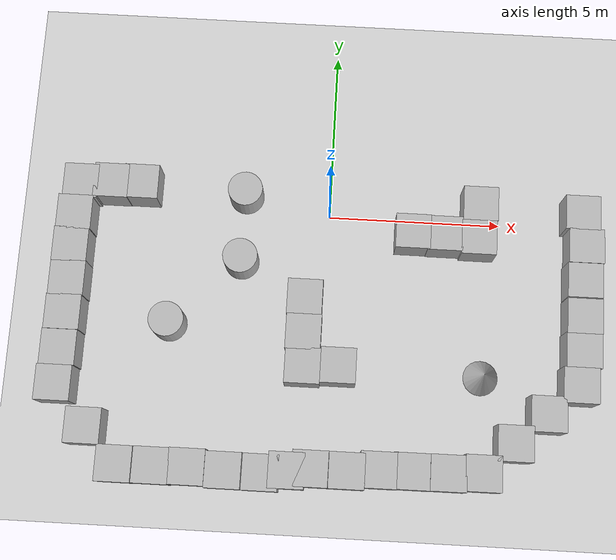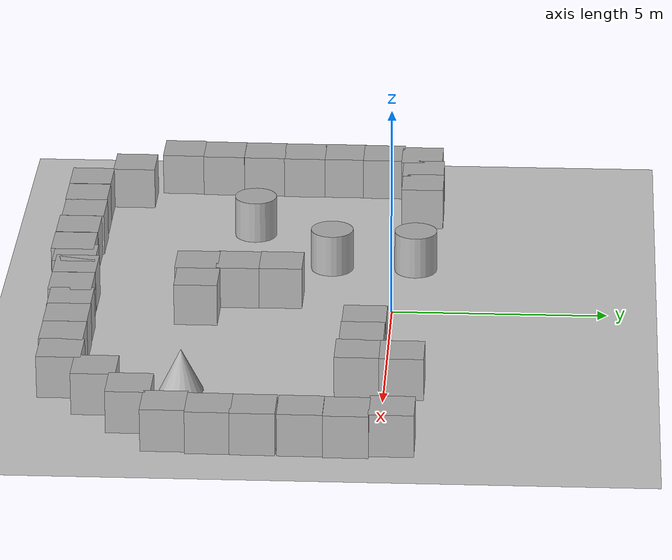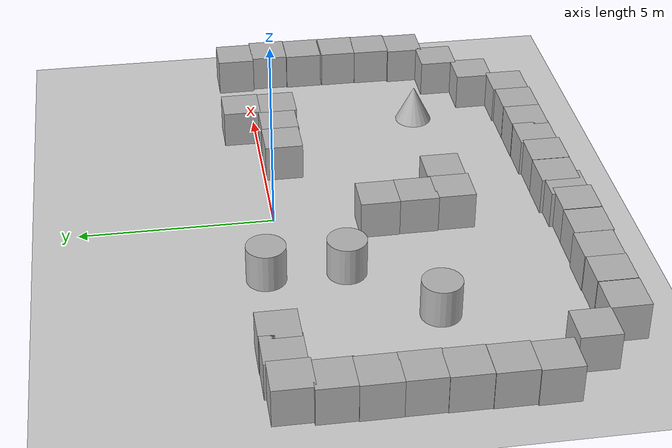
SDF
<sdf version="1.10">
 <world name="empty">
  <model name="ground_plane">
   <static>true</static>
   <link name="link">
    <collision name="collision">
     <geometry><plane><normal>0 0 1</normal><size>100 100</size></plane></geometry>
    </collision>
    <visual name="visual">
     <geometry><plane><normal>0 0 1</normal><size>100 100</size></plane></geometry>
     <material>
      <ambient>0.800000012 0.800000012 0.800000012 1</ambient>
      <diffuse>0.800000012 0.800000012 0.800000012 1</diffuse>
      <specular>0.800000012 0.800000012 0.800000012 1</specular>
     </material>
    </visual>
    <inertial>
     <mass>1</mass>
     <inertia><ixx>1</ixx><ixy>0</ixy><ixz>0</ixz><iyy>1</iyy><iyz>0</iyz><izz>1</izz></inertia>
    </inertial>
   </link>
  </model>
  <model name="cylinder">
   <pose>-2.4787298964407922 0.47555413468499341 0.49999942638036005 1.8965155421226654e-19 3.0032176483774435e-19 -9.0381767484860335e-21</pose>
   <link name="cylinder_link">
    <inertial>
     <inertia>
      <ixx>0.14580000000000001</ixx>
      <ixy>0</ixy>
      <ixz>0</ixz>
      <iyy>0.14580000000000001</iyy>
      <iyz>0</iyz>
      <izz>0.125</izz>
     </inertia>
     <mass>1</mass>
    </inertial>
    <collision name="cylinder_collision">
     <geometry><cylinder><radius>0.5</radius><length>1</length></cylinder></geometry>
    </collision>
    <visual name="cylinder_visual">
     <geometry><cylinder><radius>0.5</radius><length>1</length></cylinder></geometry>
     <material>
      <ambient>0.300000012 0.300000012 0.300000012 1</ambient>
      <diffuse>0.699999988 0.699999988 0.699999988 1</diffuse>
      <specular>1 1 1 1</specular>
     </material>
    </visual>
   </link>
   <static>false</static>
  </model>
  <model name="cylinder_0">
   <pose>-2.4944941398360996 -1.5050460931617933 0.49999942638036005 -9.451208056923102e-20 4.300082519062569e-19 6.8155861792033474e-21</pose>
   <link name="cylinder_link">
    <inertial>
     <inertia>
      <ixx>0.14580000000000001</ixx>
      <ixy>0</ixy>
      <ixz>0</ixz>
      <iyy>0.14580000000000001</iyy>
      <iyz>0</iyz>
      <izz>0.125</izz>
     </inertia>
     <mass>1</mass>
    </inertial>
    <collision name="cylinder_collision">
     <geometry><cylinder><radius>0.5</radius><length>1</length></cylinder></geometry>
    </collision>
    <visual name="cylinder_visual">
     <geometry><cylinder><radius>0.5</radius><length>1</length></cylinder></geometry>
     <material>
      <ambient>0.300000012 0.300000012 0.300000012 1</ambient>
      <diffuse>0.699999988 0.699999988 0.699999988 1</diffuse>
      <specular>1 1 1 1</specular>
     </material>
    </visual>
   </link>
   <static>false</static>
  </model>
  <model name="box_2">
   <pose>-0.53410556503870477 -4.5478043600571363 0.4999999902278196 1.9656681869713402e-08 -1.1524613135909799e-10 6.3075753912477546e-07</pose>
   <link name="box_link">
    <inertial>
     <inertia><ixx>0.16666</ixx><ixy>0</ixy><ixz>0</ixz><iyy>0.16666</iyy><iyz>0</iyz><izz>0.16666</izz></inertia>
     <mass>1</mass>
    </inertial>
    <collision name="box_collision"><geometry><box><size>1 1 1</size></box></geometry></collision>
    <visual name="box_visual">
     <geometry><box><size>1 1 1</size></box></geometry>
     <material>
      <ambient>0.300000012 0.300000012 0.300000012 1</ambient>
      <diffuse>0.699999988 0.699999988 0.699999988 1</diffuse>
      <specular>1 1 1 1</specular>
     </material>
    </visual>
   </link>
   <static>false</static>
  </model>
  <model name="box_3">
   <pose>-0.56094903997092826 -3.5893649230956175 0.49999999020007962 -9.8027606147936074e-09 -6.8125787869436315e-13 1.5771510889533733e-07</pose>
   <link name="box_link">
    <inertial>
     <inertia><ixx>0.16666</ixx><ixy>0</ixy><ixz>0</ixz><iyy>0.16666</iyy><iyz>0</iyz><izz>0.16666</izz></inertia>
     <mass>1</mass>
    </inertial>
    <collision name="box_collision"><geometry><box><size>1 1 1</size></box></geometry></collision>
    <visual name="box_visual">
     <geometry><box><size>1 1 1</size></box></geometry>
     <material>
      <ambient>0.300000012 0.300000012 0.300000012 1</ambient>
      <diffuse>0.699999988 0.699999988 0.699999988 1</diffuse>
      <specular>1 1 1 1</specular>
     </material>
    </visual>
   </link>
   <static>false</static>
  </model>
  <model name="box_4">
   <pose>-0.57684420060578601 -2.5893643469614012 0.49999999019962799 -9.7985463552778233e-09 -6.7892859761239003e-13 1.8663244424998509e-07</pose>
   <link name="box_link">
    <inertial>
     <inertia><ixx>0.16666</ixx><ixy>0</ixy><ixz>0</ixz><iyy>0.16666</iyy><iyz>0</iyz><izz>0.16666</izz></inertia>
     <mass>1</mass>
    </inertial>
    <collision name="box_collision"><geometry><box><size>1 1 1</size></box></geometry></collision>
    <visual name="box_visual">
     <geometry><box><size>1 1 1</size></box></geometry>
     <material>
      <ambient>0.300000012 0.300000012 0.300000012 1</ambient>
      <diffuse>0.699999988 0.699999988 0.699999988 1</diffuse>
      <specular>1 1 1 1</specular>
     </material>
    </visual>
   </link>
   <static>false</static>
  </model>
  <model name="box_5">
   <pose>0.4658941225453252 -4.4876447452990105 0.49999999019677743 1.4045741384028449e-11 9.5892851848946801e-09 3.1991576014536165e-07</pose>
   <link name="box_link">
    <inertial>
     <inertia><ixx>0.16666</ixx><ixy>0</ixy><ixz>0</ixz><iyy>0.16666</iyy><iyz>0</iyz><izz>0.16666</izz></inertia>
     <mass>1</mass>
    </inertial>
    <collision name="box_collision"><geometry><box><size>1 1 1</size></box></geometry></collision>
    <visual name="box_visual">
     <geometry><box><size>1 1 1</size></box></geometry>
     <material>
      <ambient>0.300000012 0.300000012 0.300000012 1</ambient>
      <diffuse>0.699999988 0.699999988 0.699999988 1</diffuse>
      <specular>1 1 1 1</specular>
     </material>
    </visual>
   </link>
   <static>false</static>
  </model>
  <model name="box_6">
   <pose>2.4251415029204986 -0.51640693351667699 0.49999999020007807 8.0485426714338308e-12 -1.9603181426533481e-08 3.2495010891417823e-06</pose>
   <link name="box_link">
    <inertial>
     <inertia><ixx>0.16666</ixx><ixy>0</ixy><ixz>0</ixz><iyy>0.16666</iyy><iyz>0</iyz><izz>0.16666</izz></inertia>
     <mass>1</mass>
    </inertial>
    <collision name="box_collision"><geometry><box><size>1 1 1</size></box></geometry></collision>
    <visual name="box_visual">
     <geometry><box><size>1 1 1</size></box></geometry>
     <material>
      <ambient>0.300000012 0.300000012 0.300000012 1</ambient>
      <diffuse>0.699999988 0.699999988 0.699999988 1</diffuse>
      <specular>1 1 1 1</specular>
     </material>
    </visual>
   </link>
   <static>false</static>
  </model>
  <model name="box_7">
   <pose>3.3460310593011684 -0.53319752396077735 0.49999999020248048 5.8692967133810578e-12 -1.9552070684915997e-08 7.8408606438712837e-06</pose>
   <link name="box_link">
    <inertial>
     <inertia><ixx>0.16666</ixx><ixy>0</ixy><ixz>0</ixz><iyy>0.16666</iyy><iyz>0</iyz><izz>0.16666</izz></inertia>
     <mass>1</mass>
    </inertial>
    <collision name="box_collision"><geometry><box><size>1 1 1</size></box></geometry></collision>
    <visual name="box_visual">
     <geometry><box><size>1 1 1</size></box></geometry>
     <material>
      <ambient>0.300000012 0.300000012 0.300000012 1</ambient>
      <diffuse>0.699999988 0.699999988 0.699999988 1</diffuse>
      <specular>1 1 1 1</specular>
     </material>
    </visual>
   </link>
   <static>false</static>
  </model>
  <model name="box_8">
   <pose>4.3155791228577778 -0.59553698079366979 0.49999999241762805 8.8830215002089552e-09 2.401707876268193e-08 2.4836349063779638e-05</pose>
   <link name="box_link">
    <inertial>
     <inertia><ixx>0.16666</ixx><ixy>0</ixy><ixz>0</ixz><iyy>0.16666</iyy><iyz>0</iyz><izz>0.16666</izz></inertia>
     <mass>1</mass>
    </inertial>
    <collision name="box_collision"><geometry><box><size>1 1 1</size></box></geometry></collision>
    <visual name="box_visual">
     <geometry><box><size>1 1 1</size></box></geometry>
     <material>
      <ambient>0.300000012 0.300000012 0.300000012 1</ambient>
      <diffuse>0.699999988 0.699999988 0.699999988 1</diffuse>
      <specular>1 1 1 1</specular>
     </material>
    </visual>
   </link>
   <static>false</static>
  </model>
  <model name="box_9">
   <pose>4.3448509277562826 0.40446374225777043 0.49999999211979645 7.6734533011678575e-09 2.3426084460918485e-08 2.4846498721593773e-05</pose>
   <link name="box_link">
    <inertial>
     <inertia><ixx>0.16666</ixx><ixy>0</ixy><ixz>0</ixz><iyy>0.16666</iyy><iyz>0</iyz><izz>0.16666</izz></inertia>
     <mass>1</mass>
    </inertial>
    <collision name="box_collision"><geometry><box><size>1 1 1</size></box></geometry></collision>
    <visual name="box_visual">
     <geometry><box><size>1 1 1</size></box></geometry>
     <material>
      <ambient>0.300000012 0.300000012 0.300000012 1</ambient>
      <diffuse>0.699999988 0.699999988 0.699999988 1</diffuse>
      <specular>1 1 1 1</specular>
     </material>
    </visual>
   </link>
   <static>false</static>
  </model>
  <model name="box_34">
   <pose>-5.5044315538563451 0.542083206494687 0.49999999990199806 2.163106304372845e-21 -1.6560291693952328e-21 2.2452215946946745e-23</pose>
   <link name="box_link">
    <inertial>
     <inertia><ixx>0.16666</ixx><ixy>0</ixy><ixz>0</ixz><iyy>0.16666</iyy><iyz>0</iyz><izz>0.16666</izz></inertia>
     <mass>1</mass>
    </inertial>
    <collision name="box_collision"><geometry><box><size>1 1 1</size></box></geometry></collision>
    <visual name="box_visual">
     <geometry><box><size>1 1 1</size></box></geometry>
     <material>
      <ambient>0.300000012 0.300000012 0.300000012 1</ambient>
      <diffuse>0.699999988 0.699999988 0.699999988 1</diffuse>
      <specular>1 1 1 1</specular>
     </material>
    </visual>
   </link>
   <static>false</static>
  </model>
  <model name="cone">
   <pose>4.5465773273243499 -4.5295696701376968 0.49999999993296756 5.2544987975732369e-17 -7.7132841042377457e-10 -9.1533761874780176e-23</pose>
   <link name="cone_link">
    <inertial>
     <inertia>
      <ixx>0.074999999999999997</ixx>
      <ixy>0</ixy>
      <ixz>0</ixz>
      <iyy>0.074999999999999997</iyy>
      <iyz>0</iyz>
      <izz>0.074999999999999997</izz>
     </inertia>
     <mass>1</mass>
    </inertial>
    <collision name="cone_collision">
     <geometry><cone><radius>0.5</radius><length>1</length></cone></geometry>
    </collision>
    <visual name="cone_visual">
     <geometry><cone><radius>0.5</radius><length>1</length></cone></geometry>
     <material>
      <ambient>0.300000012 0.300000012 0.300000012 1</ambient>
      <diffuse>0.699999988 0.699999988 0.699999988 1</diffuse>
      <specular>1 1 1 1</specular>
     </material>
    </visual>
   </link>
   <static>false</static>
  </model>
  <model name="cylinder_1">
   <pose>-4.4510745490723673 -3.4427415470059755 0.49999942638036005 1.2726184852691248e-19 1.5812777660193695e-19 -1.4361294515971304e-20</pose>
   <link name="cylinder_link">
    <inertial>
     <inertia>
      <ixx>0.14580000000000001</ixx>
      <ixy>0</ixy>
      <ixz>0</ixz>
      <iyy>0.14580000000000001</iyy>
      <iyz>0</iyz>
      <izz>0.125</izz>
     </inertia>
     <mass>1</mass>
    </inertial>
    <collision name="cylinder_collision">
     <geometry><cylinder><radius>0.5</radius><length>1</length></cylinder></geometry>
    </collision>
    <visual name="cylinder_visual">
     <geometry><cylinder><radius>0.5</radius><length>1</length></cylinder></geometry>
     <material>
      <ambient>0.300000012 0.300000012 0.300000012 1</ambient>
      <diffuse>0.699999988 0.699999988 0.699999988 1</diffuse>
      <specular>1 1 1 1</specular>
     </material>
    </visual>
   </link>
   <static>false</static>
  </model>
  <model name="box_39">
   <pose>-6.3780209379539787 0.5295749945149385 0.5 0 0 0</pose>
   <link name="box_link">
    <inertial>
     <inertia><ixx>0.16666</ixx><ixy>0</ixy><ixz>0</ixz><iyy>0.16666</iyy><iyz>0</iyz><izz>0.16666</izz></inertia>
     <mass>1</mass>
    </inertial>
    <collision name="box_collision"><geometry><box><size>1 1 1</size></box></geometry></collision>
    <visual name="box_visual">
     <geometry><box><size>1 1 1</size></box></geometry>
     <material>
      <ambient>0.300000012 0.300000012 0.300000012 1</ambient>
      <diffuse>0.699999988 0.699999988 0.699999988 1</diffuse>
      <specular>1 1 1 1</specular>
     </material>
    </visual>
   </link>
   <static>false</static>
  </model>
  <model name="box_40">
   <pose>-7.2518758245201305 0.47451998126555095 0.5 0 0 0</pose>
   <link name="box_link">
    <inertial>
     <inertia><ixx>0.16666</ixx><ixy>0</ixy><ixz>0</ixz><iyy>0.16666</iyy><iyz>0</iyz><izz>0.16666</izz></inertia>
     <mass>1</mass>
    </inertial>
    <collision name="box_collision"><geometry><box><size>1 1 1</size></box></geometry></collision>
    <visual name="box_visual">
     <geometry><box><size>1 1 1</size></box></geometry>
     <material>
      <ambient>0.300000012 0.300000012 0.300000012 1</ambient>
      <diffuse>0.699999988 0.699999988 0.699999988 1</diffuse>
      <specular>1 1 1 1</specular>
     </material>
    </visual>
   </link>
   <static>false</static>
  </model>
  <model name="box_41">
   <pose>-7.3454124965656495 -0.46566819218916733 0.5 0 0 0</pose>
   <link name="box_link">
    <inertial>
     <inertia><ixx>0.16666</ixx><ixy>0</ixy><ixz>0</ixz><iyy>0.16666</iyy><iyz>0</iyz><izz>0.16666</izz></inertia>
     <mass>1</mass>
    </inertial>
    <collision name="box_collision"><geometry><box><size>1 1 1</size></box></geometry></collision>
    <visual name="box_visual">
     <geometry><box><size>1 1 1</size></box></geometry>
     <material>
      <ambient>0.300000012 0.300000012 0.300000012 1</ambient>
      <diffuse>0.699999988 0.699999988 0.699999988 1</diffuse>
      <specular>1 1 1 1</specular>
     </material>
    </visual>
   </link>
   <static>false</static>
  </model>
  <model name="box_42">
   <pose>-7.3650336498123163 -1.4249903540472391 0.5 0 0 0</pose>
   <link name="box_link">
    <inertial>
     <inertia><ixx>0.16666</ixx><ixy>0</ixy><ixz>0</ixz><iyy>0.16666</iyy><iyz>0</iyz><izz>0.16666</izz></inertia>
     <mass>1</mass>
    </inertial>
    <collision name="box_collision"><geometry><box><size>1 1 1</size></box></geometry></collision>
    <visual name="box_visual">
     <geometry><box><size>1 1 1</size></box></geometry>
     <material>
      <ambient>0.300000012 0.300000012 0.300000012 1</ambient>
      <diffuse>0.699999988 0.699999988 0.699999988 1</diffuse>
      <specular>1 1 1 1</specular>
     </material>
    </visual>
   </link>
   <static>false</static>
  </model>
  <model name="box_43">
   <pose>-7.3588651426791216 -2.4083784488609679 0.5 0 0 0</pose>
   <link name="box_link">
    <inertial>
     <inertia><ixx>0.16666</ixx><ixy>0</ixy><ixz>0</ixz><iyy>0.16666</iyy><iyz>0</iyz><izz>0.16666</izz></inertia>
     <mass>1</mass>
    </inertial>
    <collision name="box_collision"><geometry><box><size>1 1 1</size></box></geometry></collision>
    <visual name="box_visual">
     <geometry><box><size>1 1 1</size></box></geometry>
     <material>
      <ambient>0.300000012 0.300000012 0.300000012 1</ambient>
      <diffuse>0.699999988 0.699999988 0.699999988 1</diffuse>
      <specular>1 1 1 1</specular>
     </material>
    </visual>
   </link>
   <static>false</static>
  </model>
  <model name="box_44">
   <pose>-7.3775270067725049 -3.3888828619188924 0.5 0 0 0</pose>
   <link name="box_link">
    <inertial>
     <inertia><ixx>0.16666</ixx><ixy>0</ixy><ixz>0</ixz><iyy>0.16666</iyy><iyz>0</iyz><izz>0.16666</izz></inertia>
     <mass>1</mass>
    </inertial>
    <collision name="box_collision"><geometry><box><size>1 1 1</size></box></geometry></collision>
    <visual name="box_visual">
     <geometry><box><size>1 1 1</size></box></geometry>
     <material>
      <ambient>0.300000012 0.300000012 0.300000012 1</ambient>
      <diffuse>0.699999988 0.699999988 0.699999988 1</diffuse>
      <specular>1 1 1 1</specular>
     </material>
    </visual>
   </link>
   <static>false</static>
  </model>
  <model name="box_45">
   <pose>-7.3933982495881132 -4.3920430540917774 0.5 0 0 0</pose>
   <link name="box_link">
    <inertial>
     <inertia><ixx>0.16666</ixx><ixy>0</ixy><ixz>0</ixz><iyy>0.16666</iyy><iyz>0</iyz><izz>0.16666</izz></inertia>
     <mass>1</mass>
    </inertial>
    <collision name="box_collision"><geometry><box><size>1 1 1</size></box></geometry></collision>
    <visual name="box_visual">
     <geometry><box><size>1 1 1</size></box></geometry>
     <material>
      <ambient>0.300000012 0.300000012 0.300000012 1</ambient>
      <diffuse>0.699999988 0.699999988 0.699999988 1</diffuse>
      <specular>1 1 1 1</specular>
     </material>
    </visual>
   </link>
   <static>false</static>
  </model>
  <model name="box_47">
   <pose>-7.4340095657029588 -5.3900380165762973 0.5 0 0 0</pose>
   <link name="box_link">
    <inertial>
     <inertia><ixx>0.16666</ixx><ixy>0</ixy><ixz>0</ixz><iyy>0.16666</iyy><iyz>0</iyz><izz>0.16666</izz></inertia>
     <mass>1</mass>
    </inertial>
    <collision name="box_collision"><geometry><box><size>1 1 1</size></box></geometry></collision>
    <visual name="box_visual">
     <geometry><box><size>1 1 1</size></box></geometry>
     <material>
      <ambient>0.300000012 0.300000012 0.300000012 1</ambient>
      <diffuse>0.699999988 0.699999988 0.699999988 1</diffuse>
      <specular>1 1 1 1</specular>
     </material>
    </visual>
   </link>
   <static>false</static>
  </model>
  <model name="box_48">
   <pose>-6.4923612505028938 -6.5224937039929225 0.5 0 0 0</pose>
   <link name="box_link">
    <inertial>
     <inertia><ixx>0.16666</ixx><ixy>0</ixy><ixz>0</ixz><iyy>0.16666</iyy><iyz>0</iyz><izz>0.16666</izz></inertia>
     <mass>1</mass>
    </inertial>
    <collision name="box_collision"><geometry><box><size>1 1 1</size></box></geometry></collision>
    <visual name="box_visual">
     <geometry><box><size>1 1 1</size></box></geometry>
     <material>
      <ambient>0.300000012 0.300000012 0.300000012 1</ambient>
      <diffuse>0.699999988 0.699999988 0.699999988 1</diffuse>
      <specular>1 1 1 1</specular>
     </material>
    </visual>
   </link>
   <static>false</static>
  </model>
  <model name="box_49">
   <pose>-5.5432172763816467 -7.5055675756777998 0.5 0 0 0</pose>
   <link name="box_link">
    <inertial>
     <inertia><ixx>0.16666</ixx><ixy>0</ixy><ixz>0</ixz><iyy>0.16666</iyy><iyz>0</iyz><izz>0.16666</izz></inertia>
     <mass>1</mass>
    </inertial>
    <collision name="box_collision"><geometry><box><size>1 1 1</size></box></geometry></collision>
    <visual name="box_visual">
     <geometry><box><size>1 1 1</size></box></geometry>
     <material>
      <ambient>0.300000012 0.300000012 0.300000012 1</ambient>
      <diffuse>0.699999988 0.699999988 0.699999988 1</diffuse>
      <specular>1 1 1 1</specular>
     </material>
    </visual>
   </link>
   <static>false</static>
  </model>
  <model name="box_50">
   <pose>-4.527408445467282 -7.5010599883586915 0.5 0 0 0</pose>
   <link name="box_link">
    <inertial>
     <inertia><ixx>0.16666</ixx><ixy>0</ixy><ixz>0</ixz><iyy>0.16666</iyy><iyz>0</iyz><izz>0.16666</izz></inertia>
     <mass>1</mass>
    </inertial>
    <collision name="box_collision"><geometry><box><size>1 1 1</size></box></geometry></collision>
    <visual name="box_visual">
     <geometry><box><size>1 1 1</size></box></geometry>
     <material>
      <ambient>0.300000012 0.300000012 0.300000012 1</ambient>
      <diffuse>0.699999988 0.699999988 0.699999988 1</diffuse>
      <specular>1 1 1 1</specular>
     </material>
    </visual>
   </link>
   <static>false</static>
  </model>
  <model name="box_51">
   <pose>-3.5433451055830938 -7.4841519221612582 0.5 0 0 0</pose>
   <link name="box_link">
    <inertial>
     <inertia><ixx>0.16666</ixx><ixy>0</ixy><ixz>0</ixz><iyy>0.16666</iyy><iyz>0</iyz><izz>0.16666</izz></inertia>
     <mass>1</mass>
    </inertial>
    <collision name="box_collision"><geometry><box><size>1 1 1</size></box></geometry></collision>
    <visual name="box_visual">
     <geometry><box><size>1 1 1</size></box></geometry>
     <material>
      <ambient>0.300000012 0.300000012 0.300000012 1</ambient>
      <diffuse>0.699999988 0.699999988 0.699999988 1</diffuse>
      <specular>1 1 1 1</specular>
     </material>
    </visual>
   </link>
   <static>false</static>
  </model>
  <model name="box_52">
   <pose>-2.5404915960346606 -7.5234249157285324 0.5 0 0 0</pose>
   <link name="box_link">
    <inertial>
     <inertia><ixx>0.16666</ixx><ixy>0</ixy><ixz>0</ixz><iyy>0.16666</iyy><iyz>0</iyz><izz>0.16666</izz></inertia>
     <mass>1</mass>
    </inertial>
    <collision name="box_collision"><geometry><box><size>1 1 1</size></box></geometry></collision>
    <visual name="box_visual">
     <geometry><box><size>1 1 1</size></box></geometry>
     <material>
      <ambient>0.300000012 0.300000012 0.300000012 1</ambient>
      <diffuse>0.699999988 0.699999988 0.699999988 1</diffuse>
      <specular>1 1 1 1</specular>
     </material>
    </visual>
   </link>
   <static>false</static>
  </model>
  <model name="box_53">
   <pose>-1.5208585789251097 -7.5296091787234545 0.5 0 0 0</pose>
   <link name="box_link">
    <inertial>
     <inertia><ixx>0.16666</ixx><ixy>0</ixy><ixz>0</ixz><iyy>0.16666</iyy><iyz>0</iyz><izz>0.16666</izz></inertia>
     <mass>1</mass>
    </inertial>
    <collision name="box_collision"><geometry><box><size>1 1 1</size></box></geometry></collision>
    <visual name="box_visual">
     <geometry><box><size>1 1 1</size></box></geometry>
     <material>
      <ambient>0.300000012 0.300000012 0.300000012 1</ambient>
      <diffuse>0.699999988 0.699999988 0.699999988 1</diffuse>
      <specular>1 1 1 1</specular>
     </material>
    </visual>
   </link>
   <static>false</static>
  </model>
  <model name="box_62">
   <pose>7.2915654392826408 0.29236324946914244 0.5 0 0 0</pose>
   <link name="box_link">
    <inertial>
     <inertia><ixx>0.16666</ixx><ixy>0</ixy><ixz>0</ixz><iyy>0.16666</iyy><iyz>0</iyz><izz>0.16666</izz></inertia>
     <mass>1</mass>
    </inertial>
    <collision name="box_collision"><geometry><box><size>1 1 1</size></box></geometry></collision>
    <visual name="box_visual">
     <geometry><box><size>1 1 1</size></box></geometry>
     <material>
      <ambient>0.300000012 0.300000012 0.300000012 1</ambient>
      <diffuse>0.699999988 0.699999988 0.699999988 1</diffuse>
      <specular>1 1 1 1</specular>
     </material>
    </visual>
   </link>
   <static>false</static>
  </model>
  <model name="box_63">
   <pose>7.3920516114719881 -0.68807278018544238 0.5 0 0 0</pose>
   <link name="box_link">
    <inertial>
     <inertia><ixx>0.16666</ixx><ixy>0</ixy><ixz>0</ixz><iyy>0.16666</iyy><iyz>0</iyz><izz>0.16666</izz></inertia>
     <mass>1</mass>
    </inertial>
    <collision name="box_collision"><geometry><box><size>1 1 1</size></box></geometry></collision>
    <visual name="box_visual">
     <geometry><box><size>1 1 1</size></box></geometry>
     <material>
      <ambient>0.300000012 0.300000012 0.300000012 1</ambient>
      <diffuse>0.699999988 0.699999988 0.699999988 1</diffuse>
      <specular>1 1 1 1</specular>
     </material>
    </visual>
   </link>
   <static>false</static>
  </model>
  <model name="box_64">
   <pose>7.3552710070181817 -1.6930398621158607 0.5 0 0 0</pose>
   <link name="box_link">
    <inertial>
     <inertia><ixx>0.16666</ixx><ixy>0</ixy><ixz>0</ixz><iyy>0.16666</iyy><iyz>0</iyz><izz>0.16666</izz></inertia>
     <mass>1</mass>
    </inertial>
    <collision name="box_collision"><geometry><box><size>1 1 1</size></box></geometry></collision>
    <visual name="box_visual">
     <geometry><box><size>1 1 1</size></box></geometry>
     <material>
      <ambient>0.300000012 0.300000012 0.300000012 1</ambient>
      <diffuse>0.699999988 0.699999988 0.699999988 1</diffuse>
      <specular>1 1 1 1</specular>
     </material>
    </visual>
   </link>
   <static>false</static>
  </model>
  <model name="box_65">
   <pose>7.3450618928803539 -2.724070903204094 0.5 0 0 0</pose>
   <link name="box_link">
    <inertial>
     <inertia><ixx>0.16666</ixx><ixy>0</ixy><ixz>0</ixz><iyy>0.16666</iyy><iyz>0</iyz><izz>0.16666</izz></inertia>
     <mass>1</mass>
    </inertial>
    <collision name="box_collision"><geometry><box><size>1 1 1</size></box></geometry></collision>
    <visual name="box_visual">
     <geometry><box><size>1 1 1</size></box></geometry>
     <material>
      <ambient>0.300000012 0.300000012 0.300000012 1</ambient>
      <diffuse>0.699999988 0.699999988 0.699999988 1</diffuse>
      <specular>1 1 1 1</specular>
     </material>
    </visual>
   </link>
   <static>false</static>
  </model>
  <model name="box_66">
   <pose>7.3282640553093081 -3.6972413827431021 0.5 0 0 0</pose>
   <link name="box_link">
    <inertial>
     <inertia><ixx>0.16666</ixx><ixy>0</ixy><ixz>0</ixz><iyy>0.16666</iyy><iyz>0</iyz><izz>0.16666</izz></inertia>
     <mass>1</mass>
    </inertial>
    <collision name="box_collision"><geometry><box><size>1 1 1</size></box></geometry></collision>
    <visual name="box_visual">
     <geometry><box><size>1 1 1</size></box></geometry>
     <material>
      <ambient>0.300000012 0.300000012 0.300000012 1</ambient>
      <diffuse>0.699999988 0.699999988 0.699999988 1</diffuse>
      <specular>1 1 1 1</specular>
     </material>
    </visual>
   </link>
   <static>false</static>
  </model>
  <model name="box_67">
   <pose>7.2532503437217386 -4.6804522000367204 0.5 0 0 0</pose>
   <link name="box_link">
    <inertial>
     <inertia><ixx>0.16666</ixx><ixy>0</ixy><ixz>0</ixz><iyy>0.16666</iyy><iyz>0</iyz><izz>0.16666</izz></inertia>
     <mass>1</mass>
    </inertial>
    <collision name="box_collision"><geometry><box><size>1 1 1</size></box></geometry></collision>
    <visual name="box_visual">
     <geometry><box><size>1 1 1</size></box></geometry>
     <material>
      <ambient>0.300000012 0.300000012 0.300000012 1</ambient>
      <diffuse>0.699999988 0.699999988 0.699999988 1</diffuse>
      <specular>1 1 1 1</specular>
     </material>
    </visual>
   </link>
   <static>false</static>
  </model>
  <model name="box_68">
   <pose>6.3592060408321798 -5.5197382209801029 0.5 0 0 0</pose>
   <link name="box_link">
    <inertial>
     <inertia><ixx>0.16666</ixx><ixy>0</ixy><ixz>0</ixz><iyy>0.16666</iyy><iyz>0</iyz><izz>0.16666</izz></inertia>
     <mass>1</mass>
    </inertial>
    <collision name="box_collision"><geometry><box><size>1 1 1</size></box></geometry></collision>
    <visual name="box_visual">
     <geometry><box><size>1 1 1</size></box></geometry>
     <material>
      <ambient>0.300000012 0.300000012 0.300000012 1</ambient>
      <diffuse>0.699999988 0.699999988 0.699999988 1</diffuse>
      <specular>1 1 1 1</specular>
     </material>
    </visual>
   </link>
   <static>false</static>
  </model>
  <model name="box_69">
   <pose>5.4511762505132113 -6.3716152909315653 0.5 0 0 0</pose>
   <link name="box_link">
    <inertial>
     <inertia><ixx>0.16666</ixx><ixy>0</ixy><ixz>0</ixz><iyy>0.16666</iyy><iyz>0</iyz><izz>0.16666</izz></inertia>
     <mass>1</mass>
    </inertial>
    <collision name="box_collision"><geometry><box><size>1 1 1</size></box></geometry></collision>
    <visual name="box_visual">
     <geometry><box><size>1 1 1</size></box></geometry>
     <material>
      <ambient>0.300000012 0.300000012 0.300000012 1</ambient>
      <diffuse>0.699999988 0.699999988 0.699999988 1</diffuse>
      <specular>1 1 1 1</specular>
     </material>
    </visual>
   </link>
   <static>false</static>
  </model>
  <model name="box_70">
   <pose>4.5899027480930101 -7.2278866563484989 0.5 0 0 0</pose>
   <link name="box_link">
    <inertial>
     <inertia><ixx>0.16666</ixx><ixy>0</ixy><ixz>0</ixz><iyy>0.16666</iyy><iyz>0</iyz><izz>0.16666</izz></inertia>
     <mass>1</mass>
    </inertial>
    <collision name="box_collision"><geometry><box><size>1 1 1</size></box></geometry></collision>
    <visual name="box_visual">
     <geometry><box><size>1 1 1</size></box></geometry>
     <material>
      <ambient>0.300000012 0.300000012 0.300000012 1</ambient>
      <diffuse>0.699999988 0.699999988 0.699999988 1</diffuse>
      <specular>1 1 1 1</specular>
     </material>
    </visual>
   </link>
   <static>false</static>
  </model>
  <model name="box_71">
   <pose>3.6289143315336014 -7.272533633630947 0.5 0 0 0</pose>
   <link name="box_link">
    <inertial>
     <inertia><ixx>0.16666</ixx><ixy>0</ixy><ixz>0</ixz><iyy>0.16666</iyy><iyz>0</iyz><izz>0.16666</izz></inertia>
     <mass>1</mass>
    </inertial>
    <collision name="box_collision"><geometry><box><size>1 1 1</size></box></geometry></collision>
    <visual name="box_visual">
     <geometry><box><size>1 1 1</size></box></geometry>
     <material>
      <ambient>0.300000012 0.300000012 0.300000012 1</ambient>
      <diffuse>0.699999988 0.699999988 0.699999988 1</diffuse>
      <specular>1 1 1 1</specular>
     </material>
    </visual>
   </link>
   <static>false</static>
  </model>
  <model name="box_72">
   <pose>2.6274682849749609 -7.2782105879367522 0.5 0 0 0</pose>
   <link name="box_link">
    <inertial>
     <inertia><ixx>0.16666</ixx><ixy>0</ixy><ixz>0</ixz><iyy>0.16666</iyy><iyz>0</iyz><izz>0.16666</izz></inertia>
     <mass>1</mass>
    </inertial>
    <collision name="box_collision"><geometry><box><size>1 1 1</size></box></geometry></collision>
    <visual name="box_visual">
     <geometry><box><size>1 1 1</size></box></geometry>
     <material>
      <ambient>0.300000012 0.300000012 0.300000012 1</ambient>
      <diffuse>0.699999988 0.699999988 0.699999988 1</diffuse>
      <specular>1 1 1 1</specular>
     </material>
    </visual>
   </link>
   <static>false</static>
  </model>
  <model name="box_73">
   <pose>1.7197735811841945 -7.2898691369004434 0.5 0 0 0</pose>
   <link name="box_link">
    <inertial>
     <inertia><ixx>0.16666</ixx><ixy>0</ixy><ixz>0</ixz><iyy>0.16666</iyy><iyz>0</iyz><izz>0.16666</izz></inertia>
     <mass>1</mass>
    </inertial>
    <collision name="box_collision"><geometry><box><size>1 1 1</size></box></geometry></collision>
    <visual name="box_visual">
     <geometry><box><size>1 1 1</size></box></geometry>
     <material>
      <ambient>0.300000012 0.300000012 0.300000012 1</ambient>
      <diffuse>0.699999988 0.699999988 0.699999988 1</diffuse>
      <specular>1 1 1 1</specular>
     </material>
    </visual>
   </link>
   <static>false</static>
  </model>
  <model name="box_74">
   <pose>0.84581123016730453 -7.3574011875032275 0.5 0 0 0</pose>
   <link name="box_link">
    <inertial>
     <inertia><ixx>0.16666</ixx><ixy>0</ixy><ixz>0</ixz><iyy>0.16666</iyy><iyz>0</iyz><izz>0.16666</izz></inertia>
     <mass>1</mass>
    </inertial>
    <collision name="box_collision"><geometry><box><size>1 1 1</size></box></geometry></collision>
    <visual name="box_visual">
     <geometry><box><size>1 1 1</size></box></geometry>
     <material>
      <ambient>0.300000012 0.300000012 0.300000012 1</ambient>
      <diffuse>0.699999988 0.699999988 0.699999988 1</diffuse>
      <specular>1 1 1 1</specular>
     </material>
    </visual>
   </link>
   <static>false</static>
  </model>
  <model name="box_75">
   <pose>-0.1640843611620888 -7.3549450055199745 0.5 0 0 0</pose>
   <link name="box_link">
    <inertial>
     <inertia><ixx>0.16666</ixx><ixy>0</ixy><ixz>0</ixz><iyy>0.16666</iyy><iyz>0</iyz><izz>0.16666</izz></inertia>
     <mass>1</mass>
    </inertial>
    <collision name="box_collision"><geometry><box><size>1 1 1</size></box></geometry></collision>
    <visual name="box_visual">
     <geometry><box><size>1 1 1</size></box></geometry>
     <material>
      <ambient>0.300000012 0.300000012 0.300000012 1</ambient>
      <diffuse>0.699999988 0.699999988 0.699999988 1</diffuse>
      <specular>1 1 1 1</specular>
     </material>
    </visual>
   </link>
   <static>false</static>
  </model>
  <model name="box_76">
   <pose>-0.80825128869673724 -7.4346465845269361 0.5 0 0 0</pose>
   <link name="box_link">
    <inertial>
     <inertia><ixx>0.16666</ixx><ixy>0</ixy><ixz>0</ixz><iyy>0.16666</iyy><iyz>0</iyz><izz>0.16666</izz></inertia>
     <mass>1</mass>
    </inertial>
    <collision name="box_collision"><geometry><box><size>1 1 1</size></box></geometry></collision>
    <visual name="box_visual">
     <geometry><box><size>1 1 1</size></box></geometry>
     <material>
      <ambient>0.300000012 0.300000012 0.300000012 1</ambient>
      <diffuse>0.699999988 0.699999988 0.699999988 1</diffuse>
      <specular>1 1 1 1</specular>
     </material>
    </visual>
   </link>
   <static>false</static>
  </model>
 </world>
</sdf>
